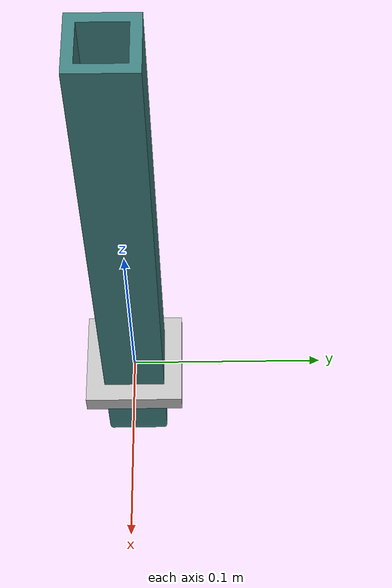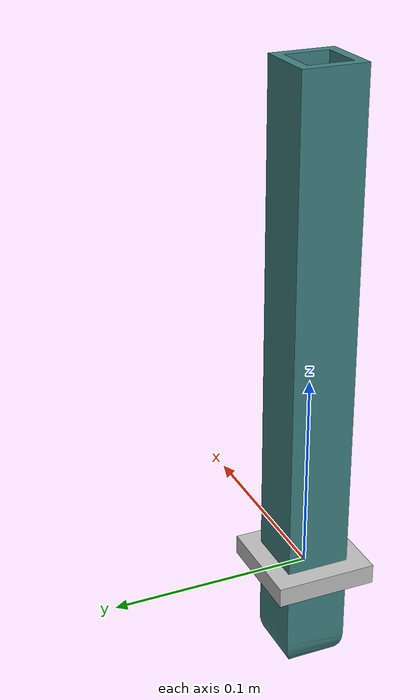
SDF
<?xml version="1.0" encoding="utf-8"?>
<sdf version="1.5">
  <model name="PegClimber1">
    <pose>0 0 0 0 0 0</pose>
    <link name="FramePlate">
      <gravity>1</gravity>
      <self_collide>0</self_collide>
      <pose>0 0 0.0 0 0 0</pose>
      <must_be_base_link>1</must_be_base_link>
      <velocity_decay>
        <linear>0</linear>
        <angular>0</angular>
      </velocity_decay>
      <inertial>
        <mass>0.0424595925</mass>
        <pose>0 0 0 0 0 0</pose>
        <inertia>
          <ixx>0</ixx>
          <ixy>0</ixy>
          <ixz>0</ixz>
          <iyy>0</iyy>
          <iyz>0</iyz>
          <izz>0</izz>
        </inertia>
      </inertial>
      <collision name="FramePlate_collision">
        <pose>-0.0121246391871303 -0.0321223867050702 -0.043458447728991 0 0 0</pose>
        <geometry>
          <mesh>
            <scale>1 1 1</scale>
            <uri>model://PegClimber/meshes/FramePlate_col.STL</uri>
          </mesh>
        </geometry>
        <surface>
          <contact>
            <ode />
          </contact>
          <friction>
            <ode>
              <mu>0</mu>
              <mu2>0</mu2>
            </ode>
          </friction>
        </surface>
      </collision>
      <visual name="FramePlate_visual">
        <pose>-0.0121246391871303 -0.0321223867050702 -0.043458447728991 0 0 0</pose>
        <material>
          <ambient>0.752941176470588 0.752941176470588 0.752941176470588 1</ambient>
          <diffuse>0.752941176470588 0.752941176470588 0.752941176470588 1</diffuse>
        </material>
        <geometry>
          <mesh>
            <scale>1 1 1</scale>
            <uri>model://PegClimber/meshes/FramePlate.STL</uri>
          </mesh>
        </geometry>
      </visual>
    </link>
    <link name="PegPiston">
      <gravity>1</gravity>
      <self_collide>0</self_collide>
      <pose>0.000379241208599657 0.000345722470512323 0.0995045610457942 0 0 0</pose>
      <must_be_base_link>0</must_be_base_link>
      <velocity_decay>
        <linear>0</linear>
        <angular>0</angular>
      </velocity_decay>
      <inertial>
        <mass>0.438198011774468</mass>
        <pose>0 0 0 0 0 0</pose>
        <inertia>
          <ixx>0</ixx>
          <ixy>0</ixy>
          <ixz>0</ixz>
          <iyy>0</iyy>
          <iyz>0</iyz>
          <izz>0</izz>
        </inertia>
      </inertial>
      <collision name="PegPiston_collision">
        <pose>-0.01250388039573 -0.0324681091755825 -0.137963008774785 0 0 0</pose>
        <geometry>
          <mesh>
            <scale>1 1 1</scale>
            <uri>model://PegClimber/meshes/Piston_col.STL</uri>
          </mesh>
        </geometry>
        <surface>
          <contact>
            <ode />
          </contact>
          <friction>
            <ode>
              <mu>0</mu>
              <mu2>0</mu2>
            </ode>
          </friction>
        </surface>
      </collision>
      <visual name="PegPiston_visual">
        <pose>-0.01250388039573 -0.0324681091755825 -0.137963008774785 0 0 0</pose>
        <material>
          <ambient>0.250980392156863 0.501960784313725 0.501960784313725 1</ambient>
          <diffuse>0.250980392156863 0.501960784313725 0.501960784313725 1</diffuse>
        </material>
        <geometry>
          <mesh>
            <scale>1 1 1</scale>
            <uri>model://PegClimber/meshes/Piston.STL</uri>
          </mesh>
        </geometry>
      </visual>
    </link>

    <joint name="FramePlate-PegPiston" type="prismatic">
      <parent>FramePlate</parent>
      <child>PegPiston</child>
      <pose>-0.000379241208599657 -0.000345722470512323 0 0 0 0</pose>
      <axis>
        <xyz>0 0 -1</xyz>
        <dynamics>
          <damping>1</damping>
          <friction>1</friction>
        </dynamics>
        <limit>
          <upper>0.15</upper>
          <lower>0</lower>
          <effort>500</effort>
        </limit>
      </axis>
    </joint>
    <plugin name="Frame-FrontClimber_motor" filename="sim_piston.dll">
      <joint>FramePlate-PegPiston</joint>
       <topic>~/gazebo/frc/simulator/piston/4</topic>
       <forward-force>400</forward-force>
       <reverse-force>400</reverse-force>
    </plugin>

  </model>
</sdf>
